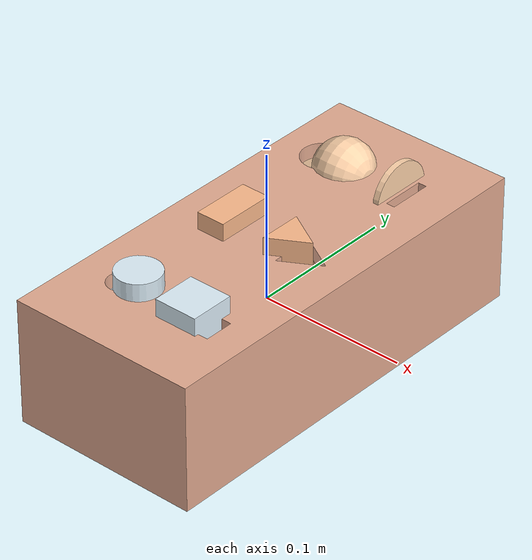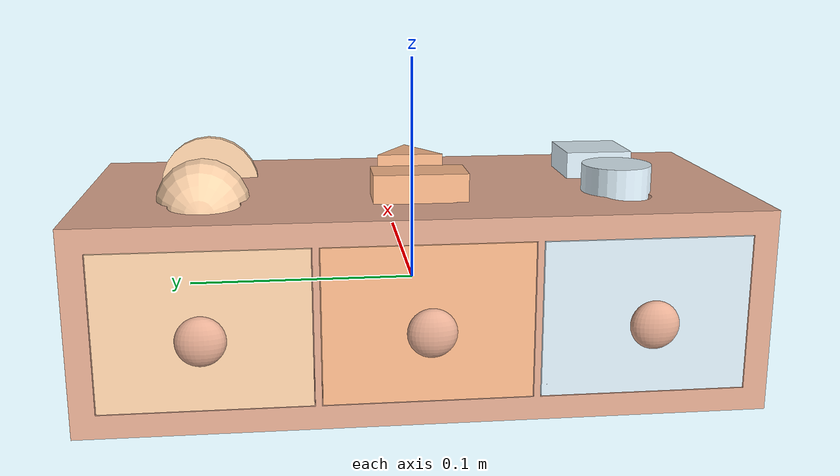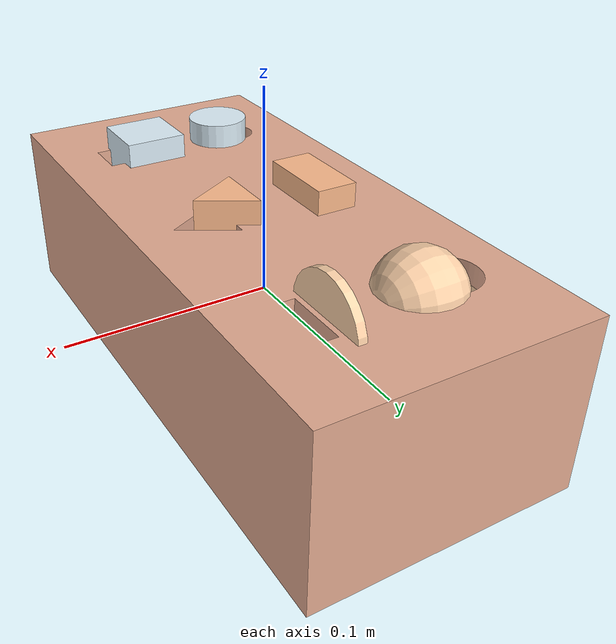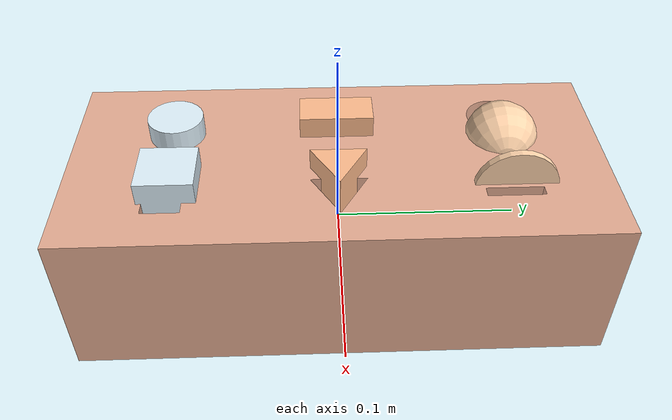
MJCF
<mujoco model="montessori_box_full">
    <size memory="1G"/>
    <option>
        <flag multiccd="enable" nativeccd="enable"/>
    </option>
    <include file="montessori_box.xml"/>
    <include file="montessori_object_1.xml"/>
    <include file="montessori_object_2.xml"/>
    <include file="montessori_object_3.xml"/>
    <include file="montessori_object_4.xml"/>
    <include file="montessori_object_5.xml"/>
    <include file="montessori_object_6.xml"/>
</mujoco>

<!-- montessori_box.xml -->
<mujoco model="montessori_box">
    <compiler angle="radian" meshdir="." autolimits="true" />
    <asset>
        <mesh name="MontessoriBox" file="stl/MontessoriBox.stl" />
        <mesh name="MontessoriDrawer" file="stl/MontessoriDrawer.stl" />
        <mesh name="MontessoriDrawerHandle" file="stl/MontessoriDrawerHandle.stl" />
    </asset>
    <default>
        <default class="montessori_box_visual">
            <geom contype="0" conaffinity="0" rgba="0.89 0.67 0.57 1.0"/>
        </default>
        <default class="montessori_box_collision">
            <geom rgba="0.9 0.9 0.9 1.0" group="3"/>
        </default>
    </default>
    <worldbody>
        <body name="montessori_box" pos="0 0 0" quat="1 0 0 0">
            <geom name="MontessoriBox" type="mesh" mesh="MontessoriBox" class="montessori_box_visual"/>
            <geom name="UCX_MontessoriBox_001" type="box" pos="-0.005 -0.044649 0" size="0.06 0.001326 0.033053" class="montessori_box_collision"/>
            <geom name="UCX_MontessoriBox_002" type="box" pos="-0.005 0.044649 0" size="0.06 0.001326 0.033053" class="montessori_box_collision"/>
            <geom name="UCX_MontessoriBox_003" type="box" pos="0.0605 0 0" size="0.0045 0.132621 0.033053" class="montessori_box_collision"/>
            <geom name="UCX_MontessoriBox_004" type="box" pos="0 -0.137621 0" size="0.065 0.005 0.033053" class="montessori_box_collision"/>
            <geom name="UCX_MontessoriBox_005" type="box" pos="0 0.137621 0" size="0.065 0.005 0.033053" class="montessori_box_collision"/>
            <geom name="UCX_MontessoriBox_006" type="box" pos="0 0 -0.038053" size="0.065 0.142621 0.005" class="montessori_box_collision"/>
            <geom name="UCX_MontessoriBox_007" type="box" pos="0 0.12346 0.038053 " size="0.065 0.0191615 0.005" class="montessori_box_collision"/>
            <geom name="UCX_MontessoriBox_008" type="box" pos="0 0.044649 0.038053 " size="0.065 0.029649 0.005" class="montessori_box_collision"/>
            <geom name="UCX_MontessoriBox_009" type="box" pos="0 -0.047149 0.038053 " size="0.065 0.032149 0.005" class="montessori_box_collision"/>
            <geom name="UCX_MontessoriBox_010" type="box" pos="0 -0.12096 0.038053 " size="0.065 0.0216615 0.005" class="montessori_box_collision"/>
            <geom name="UCX_MontessoriBox_011" type="box" pos="0.050243 0.089298 0.038053" size="0.0147815 0.015 0.005" class="montessori_box_collision"/>
            <geom name="UCX_MontessoriBox_012" type="box" pos="0.00597 0.089298 0.038053" size="0.0234915 0.015 0.005" class="montessori_box_collision"/>
            <geom name="UCX_MontessoriBox_013" type="box" pos="-0.056273 0.089298 0.038053" size="0.008751 0.015 0.005" class="montessori_box_collision"/>
            <geom name="UCX_MontessoriBox_014" type="box" pos="-0.017522 0.074298 0.038053" quat="0.9238795 0 0 0.3826834" size="0.006213 0.006213 0.005" class="montessori_box_collision"/>
            <geom name="UCX_MontessoriBox_015" type="box" pos="-0.017522 0.104298 0.038053" quat="0.9238795 0 0 0.3826834" size="0.006213 0.006213 0.005" class="montessori_box_collision"/>
            <geom name="UCX_MontessoriBox_016" type="box" pos="-0.047522 0.104298 0.038053" quat="0.9238795 0 0 0.3826834" size="0.006213 0.006213 0.005" class="montessori_box_collision"/>
            <geom name="UCX_MontessoriBox_017" type="box" pos="-0.047522 0.074298 0.038053" quat="0.9238795 0 0 0.3826834" size="0.006213 0.006213 0.005" class="montessori_box_collision"/>
            <geom name="UCX_MontessoriBox_018" type="box" pos="0.055238 0 0.038053" size="0.009786 0.015 0.005" class="montessori_box_collision"/>
            <geom name="UCX_MontessoriBox_019" type="box" pos="-0.051273 0 0.038053" size="0.013751 0.015 0.005" class="montessori_box_collision"/>
            <geom name="UCX_MontessoriBox_020" type="box" pos="-0.004025 0 0.038053" size="0.0235 0.015 0.005" class="montessori_box_collision"/>
            <geom name="UCX_MontessoriBox_021" type="box" pos="0.039961 -0.02049 0.038053" quat="0.9659258 0 0 0.258819" size="0.015 0.015 0.005" class="montessori_box_collision"/>
            <geom name="UCX_MontessoriBox_022" type="box" pos="0.039961 0.02049 0.038053" quat="0.9659258 0 0 -0.258819" size="0.015 0.015 0.005" class="montessori_box_collision"/>
            <geom name="UCX_MontessoriBox_023" type="box" pos="0.053743 -0.089298 0.038053" size="0.0112815 0.01 0.005" class="montessori_box_collision"/>
            <geom name="UCX_MontessoriBox_024" type="box" pos="0 -0.089298 0.038053" size="0.0224915 0.01 0.005" class="montessori_box_collision"/>
            <geom name="UCX_MontessoriBox_025" type="box" pos="-0.053773 -0.089298 0.038053" size="0.011251 0.01 0.005" class="montessori_box_collision"/>
            <geom name="UCX_MontessoriBox_026" type="box" pos="-0.042522 -0.099298 0.038053" quat="0.9238795 0 0 0.3826834" size="0.004142 0.004142 0.005" class="montessori_box_collision"/>
            <geom name="UCX_MontessoriBox_027" type="box" pos="-0.022522 -0.099298 0.038053" quat="0.9238795 0 0 0.3826834" size="0.004142 0.004142 0.005" class="montessori_box_collision"/>
            <geom name="UCX_MontessoriBox_028" type="box" pos="-0.022522 -0.079298 0.038053" quat="0.9238795 0 0 0.3826834" size="0.004142 0.004142 0.005" class="montessori_box_collision"/>
            <geom name="UCX_MontessoriBox_029" type="box" pos="-0.042522 -0.079298 0.038053" quat="0.9238795 0 0 0.3826834" size="0.004142 0.004142 0.005" class="montessori_box_collision"/>

            <body name="montessori_drawer_1" pos="-0.005 0.089298 0">
                <inertial mass="0.16877292096614838" pos="-4.1819294693823394e-09 -4.8547952324895505e-09 -0.0074079083278775215" quat="0.0 0.7071067690849304 0.0 0.7071067690849304" diaginertia="0.00047040951903909445 0.000373675546143204 0.00024498385027982295"/>
                <geom name="MontessoriDrawer1" type="mesh" mesh="MontessoriDrawer" rgba="1.0 0.83 0.67 1.0" class="montessori_box_visual"/>
                <geom name="UCX_MontessoriDrawer1_001" type="box" pos="0 0 -0.030247" size="0.06 0.04289 0.002475" class="montessori_box_collision"/>
                <geom name="UCX_MontessoriDrawer1_002" type="box" pos="0 -0.040415 0.002475" size="0.06 0.0024755 0.030247" class="montessori_box_collision"/>
                <geom name="UCX_MontessoriDrawer1_003" type="box" pos="0 0.040415 0.002475" size="0.06 0.0024755 0.030247" class="montessori_box_collision"/>
                <geom name="UCX_MontessoriDrawer1_004" type="box" pos="-0.057524 0 0.002475" size="0.0025 0.0379395 0.030247" class="montessori_box_collision"/>
                <geom name="UCX_MontessoriDrawer1_005" type="box" pos="0.057524 0 0.002475" size="0.0025 0.0379395 0.030247" class="montessori_box_collision"/>
                <joint name="montessori_drawer_1_joint" type="slide" axis="-1 0 0" range="0 0.1" damping="1"/>

                <body name="montessori_drawer_1_handle" pos="-0.07 0 0" >
                    <geom name="MontessoriDrawerHandle1" type="mesh" mesh="MontessoriDrawerHandle" class="montessori_box_visual"/>
                    <geom name="UCX_MontessoriDrawer1Handle_001" type="cylinder" pos="0.005 0 0" quat="0.707 0 0.707 0" size="0.0025 0.005" class="montessori_box_collision"/>
                    <geom name="UCX_MontessoriDrawer1Handle_002" type="ellipsoid" size="0.005 0.01 0.01" class="montessori_box_collision"/>
                </body>
            </body>

            <body name="montessori_drawer_2" pos="-0.005 0 0">
                <inertial mass="0.16877292096614838" pos="-4.1819294693823394e-09 -4.8547952324895505e-09 -0.0074079083278775215" quat="0.0 0.7071067690849304 0.0 0.7071067690849304" diaginertia="0.00047040951903909445 0.000373675546143204 0.00024498385027982295"/>
                <geom name="MontessoriDrawer2" type="mesh" mesh="MontessoriDrawer" rgba="0.99 0.73 0.55 1.0" class="montessori_box_visual"/>
                <geom name="UCX_MontessoriDrawer2_001" type="box" pos="0 0 -0.030247" size="0.06 0.04289 0.002475" class="montessori_box_collision"/>
                <geom name="UCX_MontessoriDrawer2_002" type="box" pos="0 -0.040415 0.002475" size="0.06 0.0024755 0.030247" class="montessori_box_collision"/>
                <geom name="UCX_MontessoriDrawer2_003" type="box" pos="0 0.040415 0.002475" size="0.06 0.0024755 0.030247" class="montessori_box_collision"/>
                <geom name="UCX_MontessoriDrawer2_004" type="box" pos="-0.057524 0 0.002475" size="0.0025 0.0379395 0.030247" class="montessori_box_collision"/>
                <geom name="UCX_MontessoriDrawer2_005" type="box" pos="0.057524 0 0.002475" size="0.0025 0.0379395 0.030247" class="montessori_box_collision"/>
                <joint name="montessori_drawer_2_joint" type="slide" axis="-1 0 0" range="0 0.1" damping="1"/>

                <body name="montessori_drawer_2_handle" pos="-0.07 0 0" >
                    <geom name="MontessoriDrawerHandle2" type="mesh" mesh="MontessoriDrawerHandle" class="montessori_box_visual"/>
                    <geom name="UCX_MontessoriDrawer2Handle_001" type="cylinder" pos="0.005 0 0" quat="0.707 0 0.707 0" size="0.0025 0.005" class="montessori_box_collision"/>
                    <geom name="UCX_MontessoriDrawer2Handle_002" type="ellipsoid" size="0.005 0.01 0.01" class="montessori_box_collision"/>
                </body>
            </body>

            <body name="montessori_drawer_3" pos="-0.005 -0.089298 0">
                <inertial mass="0.16877292096614838" pos="-4.1819294693823394e-09 -4.8547952324895505e-09 -0.0074079083278775215" quat="0.0 0.7071067690849304 0.0 0.7071067690849304" diaginertia="0.00047040951903909445 0.000373675546143204 0.00024498385027982295"/>
                <geom name="MontessoriDrawer3" type="mesh" mesh="MontessoriDrawer" rgba="0.87 0.94 0.98 1.0" class="montessori_box_visual"/>
                <geom name="UCX_MontessoriDrawer3_001" type="box" pos="0 0 -0.030247" size="0.06 0.04289 0.002475" class="montessori_box_collision"/>
                <geom name="UCX_MontessoriDrawer3_002" type="box" pos="0 -0.040415 0.002475" size="0.06 0.0024755 0.030247" class="montessori_box_collision"/>
                <geom name="UCX_MontessoriDrawer3_003" type="box" pos="0 0.040415 0.002475" size="0.06 0.0024755 0.030247" class="montessori_box_collision"/>
                <geom name="UCX_MontessoriDrawer3_004" type="box" pos="-0.057524 0 0.002475" size="0.0025 0.0379395 0.030247" class="montessori_box_collision"/>
                <geom name="UCX_MontessoriDrawer3_005" type="box" pos="0.057524 0 0.002475" size="0.0025 0.0379395 0.030247" class="montessori_box_collision"/>
                <joint name="montessori_drawer_3_joint" type="slide" axis="-1 0 0" range="0 0.1" damping="1"/>

                <body name="montessori_drawer_3_handle" pos="-0.07 0 0" >
                    <geom name="MontessoriDrawerHandle3" type="mesh" mesh="MontessoriDrawerHandle" class="montessori_box_visual"/>
                    <geom name="UCX_MontessoriDrawer3Handle_001" type="cylinder" pos="0.005 0 0" quat="0.707 0 0.707 0" size="0.0025 0.005" class="montessori_box_collision"/>
                    <geom name="UCX_MontessoriDrawer3Handle_002" type="ellipsoid" size="0.005 0.01 0.01" class="montessori_box_collision"/>
                </body>
            </body>
        </body>
    </worldbody>
</mujoco>

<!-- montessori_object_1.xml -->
<mujoco model="montessori_object_1">
    <compiler angle="radian" meshdir="." autolimits="true" inertiafromgeom="true"/>
    <default>
        <default class="montessori_object_1_collision">
            <geom rgba="1.0 0.83 0.67 1.0"/>
        </default>
    </default>
    <worldbody>
        <body name="montessori_object_1" pos="0.025 0.091 0.04" quat="0.707 0 0.707 0">
            <freejoint/>
            <inertial mass="0.004115183837711811" pos="0.0 0.0 0.0" quat="1.0 0.0 0.0 0.0" diaginertia="2.389725182183611e-07 2.389725182183611e-07 4.5374528667707636e-07"/>
            <geom name="MontessoriObject1" type="cylinder" size="0.022 0.002" class="montessori_object_1_collision"/>
        </body>
    </worldbody>
</mujoco>

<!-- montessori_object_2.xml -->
<mujoco model="montessori_object_2">
    <compiler angle="radian" meshdir="." autolimits="true" inertiafromgeom="true"/>
    <asset>
        <mesh name="MontessoriObject_002" file="stl/MontessoriObject_002.stl" />
    </asset>
    <default>
        <default class="montessori_object_2_collision">
            <geom rgba="0.99 0.73 0.55 1.0"/>
        </default>
    </default>
    <worldbody>
        <body name="montessori_object_2" pos="0.0185 0 0.04" quat="1 0 0 0">
            <freejoint/>
            <inertial mass="0.01134409662336111" pos="0.0 0.0 0.0" quat="1.0 0.0 0.0 0.0" diaginertia="1.2508141935541062e-06 1.2508141935541062e-06 8.338761290360708e-07"/>
			<geom name="MontessoriObject2" type="mesh" mesh="MontessoriObject_002" class="montessori_object_2_collision"/>
        </body>
    </worldbody>
</mujoco>

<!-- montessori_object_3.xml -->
<mujoco model="montessori_object_3">
    <compiler angle="radian" meshdir="." autolimits="true" inertiafromgeom="true"/>
    <default>
        <default class="montessori_object_3_collision">
            <geom rgba="0.87 0.94 0.98 1.0"/>
        </default>
    </default>
    <worldbody>
        <body name="montessori_object_3" pos="0.0205 -0.087 0.04" quat="1 0 0 0">
            <freejoint/>
            <inertial mass="0.007762392051517963" pos="0.0 0.0 0.0" quat="1.0 0.0 0.0 0.0" diaginertia="5.071946702628338e-07 5.071946702628338e-07 5.071946702628338e-07"/>
			<geom name="MontessoriObject3" type="box" size="0.015 0.015 0.015" class="montessori_object_3_collision"/>
        </body>
    </worldbody>
</mujoco>

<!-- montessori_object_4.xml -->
<mujoco model="montessori_object_4">
    <compiler angle="radian" meshdir="." autolimits="true" inertiafromgeom="true"/>
    <default>
        <default class="montessori_object_4_collision">
            <geom rgba="1.0 0.83 0.67 1.0"/>
        </default>
    </default>
    <worldbody>
        <body name="montessori_object_4" pos="-0.0175 0.091 0.04" quat="0.707 0 0.707 0">
            <freejoint/>
            <inertial mass="0.013717278838157654" pos="0.0 0.0 0.0" quat="1.0 0.0 0.0 0.0" diaginertia="1.2099874311388703e-06 1.2099874311388703e-06 1.2099874311388703e-06"/>
			<geom name="MontessoriObject4" type="sphere" size="0.02" class="montessori_object_4_collision"/>
        </body>
    </worldbody>
</mujoco>

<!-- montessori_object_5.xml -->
<mujoco model="montessori_object_5">
    <compiler angle="radian" meshdir="." autolimits="true" inertiafromgeom="true"/>
    <default>
        <default class="montessori_object_5_collision">
            <geom rgba="0.99 0.73 0.55 1.0"/>
        </default>
    </default>
    <worldbody>
        <body name="montessori_object_5" pos="-0.0265 0 0.04" quat="1 0 0 0">
            <freejoint/>
            <inertial mass="0.008732691407203674" pos="0.0 0.0 0.0" quat="1.0 0.0 0.0 0.0" diaginertia="1.2838365819334285e-06 7.132425139388943e-07 7.132425139388943e-07"/>
			<geom name="MontessoriObject5" type="box" size="0.01 0.02 0.015" class="montessori_object_5_collision"/>
        </body>
    </worldbody>
</mujoco>

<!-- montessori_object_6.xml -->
<mujoco model="montessori_object_6">
    <compiler angle="radian" meshdir="." autolimits="true" inertiafromgeom="true"/>
    <default>
        <default class="montessori_object_6_collision">
            <geom rgba="0.87 0.94 0.98 1.0"/>
        </default>
    </default>
    <worldbody>
        <body name="montessori_object_6" pos="-0.0215 -0.087 0.04" quat="1 0 0 0">
            <freejoint/>
            <inertial mass="0.006096568424254656" pos="0.0 0.0 0.0" quat="1.0 0.0 0.0 0.0" diaginertia="3.485560569060908e-07 3.485560569060908e-07 2.987623304306908e-07"/>
			<geom name="MontessoriObject6" type="cylinder" size="0.015 0.015" class="montessori_object_6_collision"/>
        </body>
    </worldbody>
</mujoco>
